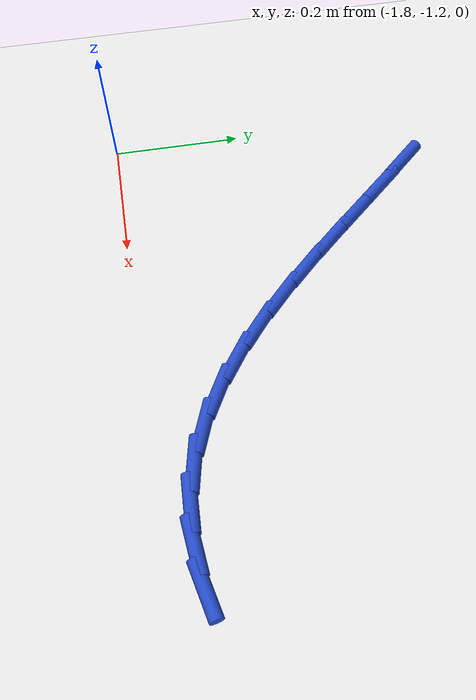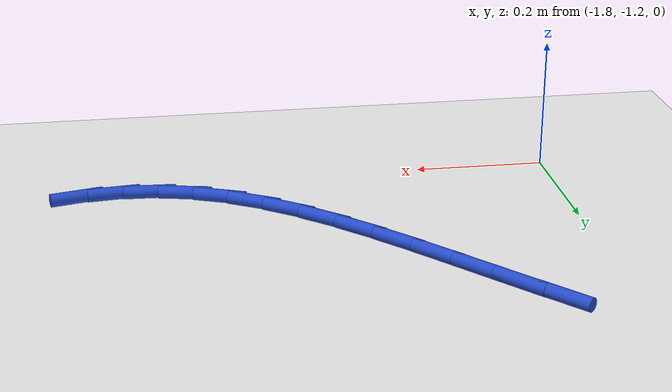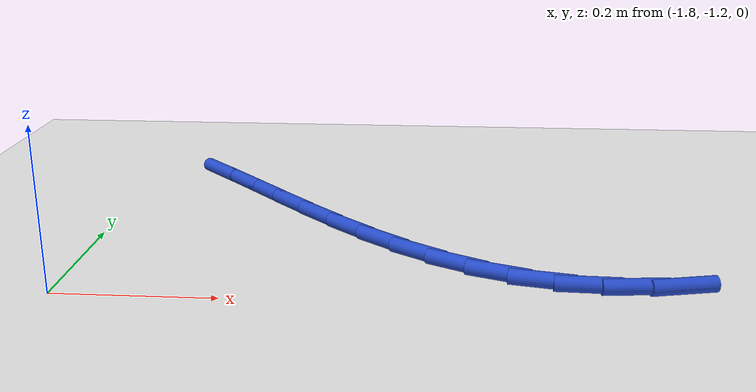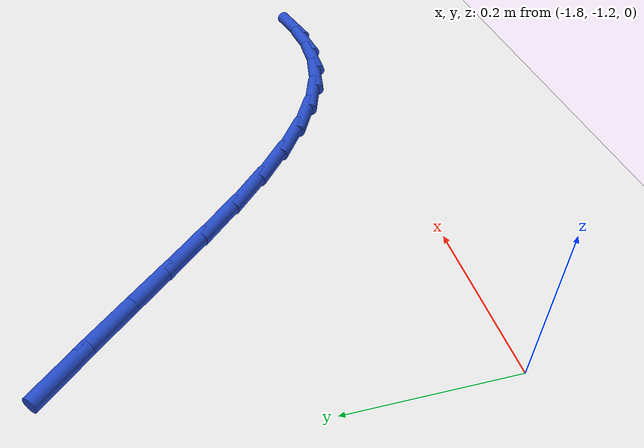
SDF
<sdf version="1.6">
 <world name="default">
  <model name="ground_plane">
   <static>1</static>
   <link name="link">
    <collision name="collision">
     <geometry><plane><normal>0 0 1</normal><size>100 100</size></plane></geometry>
     <surface><friction><ode><mu>100</mu><mu2>50</mu2></ode></friction></surface>
    </collision>
    <visual name="visual">
     <cast_shadows>0</cast_shadows>
     <geometry><plane><normal>0 0 1</normal><size>100 100</size></plane></geometry>
     <material>
      <script><uri>file://media/materials/scripts/gazebo.material</uri><name>Gazebo/WhiteGlow</name></script>
     </material>
    </visual>
   </link>
  </model>
  <model name="line">
   <link name="link_70">
    <pose>-1.6968142811490226 -0.739588939132767 0.01 0 1.57 -0.8187097557218059</pose>
    <collision name="collision">
     <geometry><cylinder><radius>0.01</radius><length>0.08</length></cylinder></geometry>
    </collision>
    <visual name="visual">
     <material>
      <script><name>Gazebo/Blue</name><uri>file://media/materials/scripts/gazebo.material</uri></script>
     </material>
     <geometry><cylinder><radius>0.01</radius><length>0.08</length></cylinder></geometry>
    </visual>
   </link>
   <link name="link_71">
    <pose>-1.6512508061762807 -0.7882938046807724 0.01 0 1.57 -0.8314260853129064</pose>
    <collision name="collision">
     <geometry><cylinder><radius>0.01</radius><length>0.08</length></cylinder></geometry>
    </collision>
    <visual name="visual">
     <material>
      <script><name>Gazebo/Blue</name><uri>file://media/materials/scripts/gazebo.material</uri></script>
     </material>
     <geometry><cylinder><radius>0.01</radius><length>0.08</length></cylinder></geometry>
    </visual>
   </link>
   <link name="link_72">
    <pose>-1.6059756178226876 -0.8379411688943995 0.01 0 1.57 -0.8315566226434147</pose>
    <collision name="collision">
     <geometry><cylinder><radius>0.01</radius><length>0.08</length></cylinder></geometry>
    </collision>
    <visual name="visual">
     <material>
      <script><name>Gazebo/Blue</name><uri>file://media/materials/scripts/gazebo.material</uri></script>
     </material>
     <geometry><cylinder><radius>0.01</radius><length>0.08</length></cylinder></geometry>
    </visual>
   </link>
   <link name="link_73">
    <pose>-1.5607903451998888 -0.887502927105148 0.01 0 1.57 -0.8185305148927285</pose>
    <collision name="collision">
     <geometry><cylinder><radius>0.01</radius><length>0.08</length></cylinder></geometry>
    </collision>
    <visual name="visual">
     <material>
      <script><name>Gazebo/Blue</name><uri>file://media/materials/scripts/gazebo.material</uri></script>
     </material>
     <geometry><cylinder><radius>0.01</radius><length>0.08</length></cylinder></geometry>
    </visual>
   </link>
   <link name="link_74">
    <pose>-1.5154785036482301 -0.9359214116244089 0.01 0 1.57 -0.7915223174465262</pose>
    <collision name="collision">
     <geometry><cylinder><radius>0.01</radius><length>0.08</length></cylinder></geometry>
    </collision>
    <visual name="visual">
     <material>
      <script><name>Gazebo/Blue</name><uri>file://media/materials/scripts/gazebo.material</uri></script>
     </material>
     <geometry><cylinder><radius>0.01</radius><length>0.08</length></cylinder></geometry>
    </visual>
   </link>
   <link name="link_75">
    <pose>-1.4698236085080603 -0.9821389547635704 0.01 0 1.57 -0.7489068402972301</pose>
    <collision name="collision">
     <geometry><cylinder><radius>0.01</radius><length>0.08</length></cylinder></geometry>
    </collision>
    <visual name="visual">
     <material>
      <script><name>Gazebo/Blue</name><uri>file://media/materials/scripts/gazebo.material</uri></script>
     </material>
     <geometry><cylinder><radius>0.01</radius><length>0.08</length></cylinder></geometry>
    </visual>
   </link>
   <link name="link_76">
    <pose>-1.423609175119725 -1.0250978888340236 0.01 0 1.57 -0.6882219034338807</pose>
    <collision name="collision">
     <geometry><cylinder><radius>0.01</radius><length>0.08</length></cylinder></geometry>
    </collision>
    <visual name="visual">
     <material>
      <script><name>Gazebo/Blue</name><uri>file://media/materials/scripts/gazebo.material</uri></script>
     </material>
     <geometry><cylinder><radius>0.01</radius><length>0.08</length></cylinder></geometry>
    </visual>
   </link>
   <link name="link_77">
    <pose>-1.376618718823574 -1.0637405461471574 0.01 0 1.57 -0.6062450476325629</pose>
    <collision name="collision">
     <geometry><cylinder><radius>0.01</radius><length>0.08</length></cylinder></geometry>
    </collision>
    <visual name="visual">
     <material>
      <script><name>Gazebo/Blue</name><uri>file://media/materials/scripts/gazebo.material</uri></script>
     </material>
     <geometry><cylinder><radius>0.01</radius><length>0.08</length></cylinder></geometry>
    </visual>
   </link>
   <link name="link_78">
    <pose>-1.3286357549599517 -1.0970092590143612 0.01 0 1.57 -0.49942700764402276</pose>
    <collision name="collision">
     <geometry><cylinder><radius>0.01</radius><length>0.08</length></cylinder></geometry>
    </collision>
    <visual name="visual">
     <material>
      <script><name>Gazebo/Blue</name><uri>file://media/materials/scripts/gazebo.material</uri></script>
     </material>
     <geometry><cylinder><radius>0.01</radius><length>0.08</length></cylinder></geometry>
    </visual>
   </link>
   <link name="link_79">
    <pose>-1.2794437988692076 -1.1238463597470252 0.01 0 1.57 -0.3650996924654881</pose>
    <collision name="collision">
     <geometry><cylinder><radius>0.01</radius><length>0.08</length></cylinder></geometry>
    </collision>
    <visual name="visual">
     <material>
      <script><name>Gazebo/Blue</name><uri>file://media/materials/scripts/gazebo.material</uri></script>
     </material>
     <geometry><cylinder><radius>0.01</radius><length>0.08</length></cylinder></geometry>
    </visual>
   </link>
   <link name="link_80">
    <pose>-1.228826365891688 -1.1431941806565389 0.01 0 1.57 -0.2041732621905364</pose>
    <collision name="collision">
     <geometry><cylinder><radius>0.01</radius><length>0.08</length></cylinder></geometry>
    </collision>
    <visual name="visual">
     <material>
      <script><name>Gazebo/Blue</name><uri>file://media/materials/scripts/gazebo.material</uri></script>
     </material>
     <geometry><cylinder><radius>0.01</radius><length>0.08</length></cylinder></geometry>
    </visual>
   </link>
   <link name="link_81">
    <pose>-1.1765717771069886 -1.154013936727227 0.01 0 1.57 -0.038011403583958964</pose>
    <collision name="collision">
     <geometry><cylinder><radius>0.01</radius><length>0.08</length></cylinder></geometry>
    </collision>
    <visual name="visual">
     <material>
      <script><name>Gazebo/Blue</name><uri>file://media/materials/scripts/gazebo.material</uri></script>
     </material>
     <geometry><cylinder><radius>0.01</radius><length>0.08</length></cylinder></geometry>
    </visual>
   </link>
   <link name="link_82">
    <pose>-1.1226711735850183 -1.156063761657559 0.01 0 1.57 0.10612278671310287</pose>
    <collision name="collision">
     <geometry><cylinder><radius>0.01</radius><length>0.08</length></cylinder></geometry>
    </collision>
    <visual name="visual">
     <material>
      <script><name>Gazebo/Blue</name><uri>file://media/materials/scripts/gazebo.material</uri></script>
     </material>
     <geometry><cylinder><radius>0.01</radius><length>0.08</length></cylinder></geometry>
    </visual>
   </link>
   <link name="link_83">
    <pose>-1.0673888138672085 -1.150174920171594 0.01 0 1.57 0.22527721096531172</pose>
    <collision name="collision">
     <geometry><cylinder><radius>0.01</radius><length>0.08</length></cylinder></geometry>
    </collision>
    <visual name="visual">
     <material>
      <script><name>Gazebo/Blue</name><uri>file://media/materials/scripts/gazebo.material</uri></script>
     </material>
     <geometry><cylinder><radius>0.01</radius><length>0.08</length></cylinder></geometry>
    </visual>
   </link>
  </model>
 </world>
</sdf>
